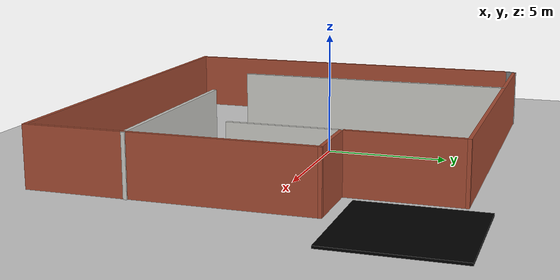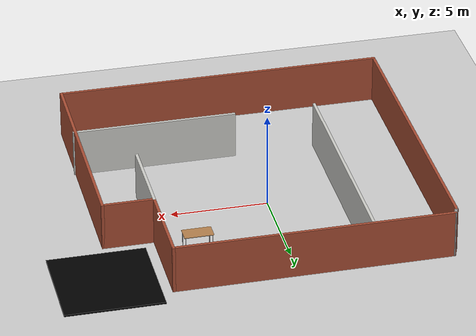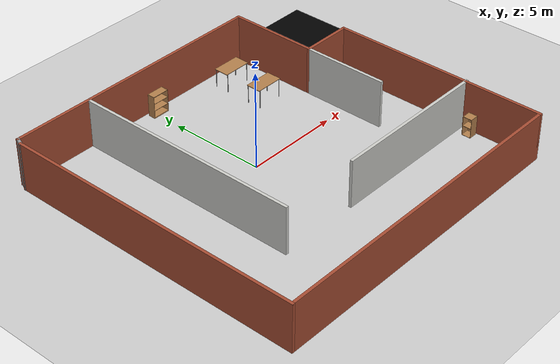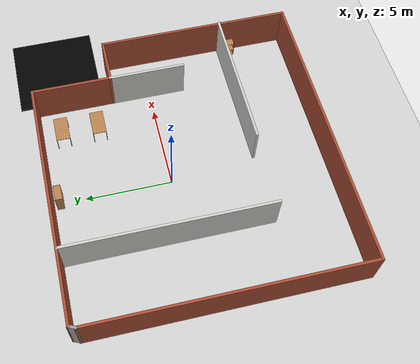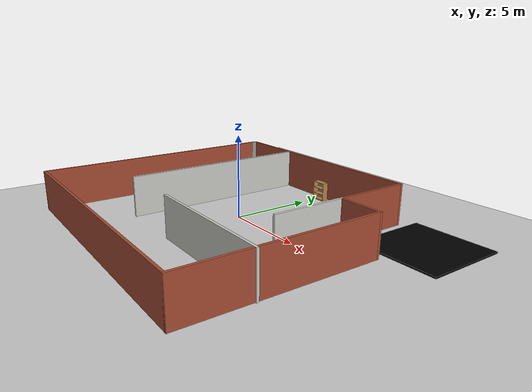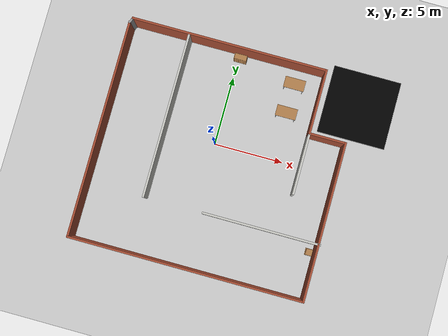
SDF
<sdf version="1.6">
 <world name="default">
  <light name="sun" type="directional">
   <pose>0 0 10 0 -0 0</pose>
   <diffuse>0.8 0.8 0.8 1</diffuse>
   <specular>0.2 0.2 0.2 1</specular>
   <attenuation>
    <range>1000</range>
    <constant>0.9</constant>
    <linear>0.01</linear>
    <quadratic>0.001</quadratic>
   </attenuation>
   <direction>-0.5 0.1 -0.9</direction>
  </light>
  <model name="ground_plane">
   <static>1</static>
   <link name="link">
    <collision name="collision">
     <geometry><plane><normal>0 0 1</normal><size>100 100</size></plane></geometry>
     <surface>
      <contact><collide_bitmask>65535</collide_bitmask></contact>
      <friction><ode><mu>100</mu><mu2>50</mu2></ode></friction>
     </surface>
    </collision>
    <visual name="visual">
     <cast_shadows>0</cast_shadows>
     <geometry><plane><normal>0 0 1</normal><size>100 100</size></plane></geometry>
     <material>
      <script>
       <uri>model://gcamp_small_building/materials/scripts/gazebo.material</uri>
       <name>Gazebo/Grey</name>
      </script>
     </material>
    </visual>
   </link>
  </model>
  <gravity>0 0 -9.8</gravity>
  <magnetic_field>6e-06 2.3e-05 -4.2e-05</magnetic_field>
  <atmosphere type="adiabatic"/>
  <physics name="default_physics" default="0" type="ode">
   <max_step_size>0.001</max_step_size>
   <real_time_factor>1</real_time_factor>
   <real_time_update_rate>1000</real_time_update_rate>
  </physics>
  <scene><ambient>0.4 0.4 0.4 1</ambient><background>0.7 0.7 0.7 1</background><shadows>1</shadows></scene>
  <spherical_coordinates>
   <surface_model>EARTH_WGS84</surface_model>
   <latitude_deg>0</latitude_deg>
   <longitude_deg>0</longitude_deg>
   <elevation>0</elevation>
   <heading_deg>0</heading_deg>
  </spherical_coordinates>
  <model name="gcamp_small_building">
   <pose>0.46855 -1.10251 0 0 -0 0</pose>
   <link name="Wall_11">
    <collision name="Wall_11_Collision">
     <geometry><box><size>12 0.15 2.5</size></box></geometry>
     <pose>3 0 1.25 0 -0 0</pose>
    </collision>
    <visual name="Wall_11_Visual">
     <pose>0 0 1.25 0 -0 0</pose>
     <geometry><box><size>12 0.15 2.5</size></box></geometry>
     <material>
      <script>
       <uri>model://gcamp_small_building/materials/scripts/gazebo.material</uri>
       <name>Gazebo/CeilingTiled</name>
      </script>
      <ambient>1 1 1 1</ambient>
     </material>
     <meta><layer>0</layer></meta>
    </visual>
    <pose>-4.16991 2.00561 0 0 -0 -1.5708</pose>
   </link>
   <link name="Wall_13">
    <collision name="Wall_13_Collision">
     <geometry><box><size>8.5 0.15 2.5</size></box></geometry>
     <pose>0 0 1.25 0 -0 0</pose>
    </collision>
    <visual name="Wall_13_Visual">
     <pose>0 0 1.25 0 -0 0</pose>
     <geometry><box><size>8.5 0.15 2.5</size></box></geometry>
     <material>
      <script>
       <uri>model://gcamp_small_building/materials/scripts/gazebo.material</uri>
       <name>Gazebo/CeilingTiled</name>
      </script>
      <ambient>1 1 1 1</ambient>
     </material>
     <meta><layer>0</layer></meta>
    </visual>
    <pose>4.29338 -3.92287 0 0 -0 0</pose>
   </link>
   <link name="Wall_15">
    <collision name="Wall_15_Collision">
     <geometry><box><size>4.5 0.15 2.5</size></box></geometry>
     <pose>0 0 1.25 0 -0 0</pose>
    </collision>
    <visual name="Wall_15_Visual">
     <pose>0 0 1.25 0 -0 0</pose>
     <geometry><box><size>4.5 0.15 2.5</size></box></geometry>
     <material>
      <script>
       <uri>model://gcamp_small_building/materials/scripts/gazebo.material</uri>
       <name>Gazebo/CeilingTiled</name>
      </script>
      <ambient>1 1 1 1</ambient>
     </material>
     <meta><layer>0</layer></meta>
    </visual>
    <pose>5.8051 1.18826 0 0 -0 -1.5708</pose>
   </link>
   <link name="Wall_3">
    <collision name="Wall_3_Collision">
     <geometry><box><size>15.75 0.15 2.5</size></box></geometry>
     <pose>0 0 1.25 0 -0 0</pose>
    </collision>
    <visual name="Wall_3_Visual">
     <pose>0 0 1.25 0 -0 0</pose>
     <geometry><box><size>15.75 0.15 2.5</size></box></geometry>
     <material>
      <script>
       <uri>model://gcamp_small_building/materials/scripts/gazebo.material</uri>
       <name>Gazebo/Bricks</name>
      </script>
      <ambient>1 1 1 1</ambient>
     </material>
     <meta><layer>0</layer></meta>
    </visual>
    <pose>-8.4449 -0.18674 0 0 -0 -1.5708</pose>
   </link>
   <link name="Wall_4">
    <collision name="Wall_4_Collision">
     <geometry><box><size>17 0.15 2.5</size></box></geometry>
     <pose>0 0 1.25 0 -0 0</pose>
    </collision>
    <visual name="Wall_4_Visual">
     <pose>0 0 1.25 0 -0 0</pose>
     <geometry><box><size>17 0.15 2.5</size></box></geometry>
     <material>
      <script>
       <uri>model://gcamp_small_building/materials/scripts/gazebo.material</uri>
       <name>Gazebo/Bricks</name>
      </script>
      <ambient>1 1 1 1</ambient>
     </material>
     <meta><layer>0</layer></meta>
    </visual>
    <pose>-0.019899 -7.98674 0 0 -0 0</pose>
   </link>
   <link name="Wall_5">
    <collision name="Wall_5_Collision">
     <geometry><box><size>11.5 0.15 2.5</size></box></geometry>
     <pose>0 0 1.25 0 -0 0</pose>
    </collision>
    <visual name="Wall_5_Visual">
     <pose>0 0 1.25 0 -0 0</pose>
     <geometry><box><size>11.5 0.15 2.5</size></box></geometry>
     <material>
      <script>
       <uri>model://gcamp_small_building/materials/scripts/gazebo.material</uri>
       <name>Gazebo/Bricks</name>
      </script>
      <ambient>1 1 1 1</ambient>
     </material>
     <meta><layer>0</layer></meta>
    </visual>
    <pose>8.4051 -2.31174 0 0 -0 1.5708</pose>
   </link>
   <link name="Wall_6">
    <collision name="Wall_6_Collision">
     <geometry><box><size>2.75 0.15 2.5</size></box></geometry>
     <pose>0 0 1.25 0 -0 0</pose>
    </collision>
    <visual name="Wall_6_Visual">
     <pose>0 0 1.25 0 -0 0</pose>
     <geometry><box><size>2.75 0.15 2.5</size></box></geometry>
     <material>
      <script>
       <uri>model://gcamp_small_building/materials/scripts/gazebo.material</uri>
       <name>Gazebo/Bricks</name>
      </script>
      <ambient>1 1 1 1</ambient>
     </material>
     <meta><layer>0</layer></meta>
    </visual>
    <pose>7.1051 3.36326 0 0 -0 3.14159</pose>
   </link>
   <link name="Wall_7">
    <collision name="Wall_7_Collision">
     <geometry><box><size>4.75 0.15 2.5</size></box></geometry>
     <pose>0 0 1.25 0 -0 0</pose>
    </collision>
    <visual name="Wall_7_Visual">
     <pose>0 0 1.25 0 -0 0</pose>
     <geometry><box><size>4.75 0.15 2.5</size></box></geometry>
     <material>
      <script>
       <uri>model://gcamp_small_building/materials/scripts/gazebo.material</uri>
       <name>Gazebo/Bricks</name>
      </script>
      <ambient>1 1 1 1</ambient>
     </material>
     <meta><layer>0</layer></meta>
    </visual>
    <pose>5.8051 5.66326 0 0 -0 1.5708</pose>
   </link>
   <link name="Wall_8">
    <collision name="Wall_8_Collision">
     <geometry><box><size>14.25 0.15 2.5</size></box></geometry>
     <pose>0 0 1.25 0 -0 0</pose>
    </collision>
    <visual name="Wall_8_Visual">
     <pose>0 0 1.25 0 -0 0</pose>
     <geometry><box><size>14.25 0.15 2.5</size></box></geometry>
     <material>
      <script>
       <uri>model://gcamp_small_building/materials/scripts/gazebo.material</uri>
       <name>Gazebo/Bricks</name>
      </script>
      <ambient>1 1 1 1</ambient>
     </material>
     <meta><layer>0</layer></meta>
    </visual>
    <pose>-1.2449 7.96326 0 0 -0 3.14159</pose>
   </link>
   <link name="Wall_9">
    <collision name="Wall_9_Collision">
     <geometry><box><size>0.530789 0.15 2.5</size></box></geometry>
     <pose>0 0 1.25 0 -0 0</pose>
    </collision>
    <visual name="Wall_9_Visual">
     <pose>0 0 1.25 0 -0 0</pose>
     <geometry><box><size>0.530789 0.15 2.5</size></box></geometry>
     <material>
      <script>
       <uri>model://gcamp_small_building/materials/scripts/gazebo.material</uri>
       <name>Gazebo/Grey</name>
      </script>
      <ambient>1 1 1 1</ambient>
     </material>
     <meta><layer>0</layer></meta>
    </visual>
    <pose>-8.3699 7.78826 0 0 -0 -1.97569</pose>
   </link>
   <static>1</static>
  </model>
  <model name="table">
   <static>1</static>
   <link name="link">
    <collision name="surface">
     <pose>0 0 1 0 -0 0</pose>
     <geometry><box><size>1.5 0.8 0.03</size></box></geometry>
     <surface><friction><ode><mu>0.6</mu><mu2>0.6</mu2></ode></friction></surface>
    </collision>
    <visual name="visual1">
     <pose>0 0 1 0 -0 0</pose>
     <geometry><box><size>1.5 0.8 0.03</size></box></geometry>
     <material>
      <script>
       <uri>model://gcamp_small_building/materials/scripts/gazebo.material</uri>
       <name>Gazebo/Wood</name>
      </script>
     </material>
    </visual>
    <collision name="front_left_leg">
     <pose>0.68 0.38 0.5 0 -0 0</pose>
     <geometry><cylinder><radius>0.02</radius><length>1</length></cylinder></geometry>
    </collision>
    <visual name="front_left_leg">
     <pose>0.68 0.38 0.5 0 -0 0</pose>
     <geometry><cylinder><radius>0.02</radius><length>1</length></cylinder></geometry>
     <material>
      <script>
       <uri>model://gcamp_small_building/materials/scripts/gazebo.material</uri>
       <name>Gazebo/Grey</name>
      </script>
     </material>
    </visual>
    <collision name="front_right_leg">
     <pose>0.68 -0.38 0.5 0 -0 0</pose>
     <geometry><cylinder><radius>0.02</radius><length>1</length></cylinder></geometry>
    </collision>
    <visual name="front_right_leg">
     <pose>0.68 -0.38 0.5 0 -0 0</pose>
     <geometry><cylinder><radius>0.02</radius><length>1</length></cylinder></geometry>
     <material>
      <script>
       <uri>model://gcamp_small_building/materials/scripts/gazebo.material</uri>
       <name>Gazebo/Grey</name>
      </script>
     </material>
    </visual>
    <collision name="back_right_leg">
     <pose>-0.68 -0.38 0.5 0 -0 0</pose>
     <geometry><cylinder><radius>0.02</radius><length>1</length></cylinder></geometry>
    </collision>
    <visual name="back_right_leg">
     <pose>-0.68 -0.38 0.5 0 -0 0</pose>
     <geometry><cylinder><radius>0.02</radius><length>1</length></cylinder></geometry>
     <material>
      <script>
       <uri>model://gcamp_small_building/materials/scripts/gazebo.material</uri>
       <name>Gazebo/Grey</name>
      </script>
     </material>
    </visual>
    <collision name="back_left_leg">
     <pose>-0.68 0.38 0.5 0 -0 0</pose>
     <geometry><cylinder><radius>0.02</radius><length>1</length></cylinder></geometry>
    </collision>
    <visual name="back_left_leg">
     <pose>-0.68 0.38 0.5 0 -0 0</pose>
     <geometry><cylinder><radius>0.02</radius><length>1</length></cylinder></geometry>
     <material>
      <script>
       <uri>model://gcamp_small_building/materials/scripts/gazebo.material</uri>
       <name>Gazebo/Grey</name>
      </script>
     </material>
    </visual>
   </link>
   <pose>4.38563 5.61757 0 0 -0 0</pose>
  </model>
  <model name="table_0">
   <static>1</static>
   <link name="link">
    <collision name="surface">
     <pose>0 0 1 0 -0 0</pose>
     <geometry><box><size>1.5 0.8 0.03</size></box></geometry>
     <surface><friction><ode><mu>0.6</mu><mu2>0.6</mu2></ode></friction></surface>
    </collision>
    <visual name="visual1">
     <pose>0 0 1 0 -0 0</pose>
     <geometry><box><size>1.5 0.8 0.03</size></box></geometry>
     <material>
      <script>
       <uri>model://gcamp_small_building/materials/scripts/gazebo.material</uri>
       <name>Gazebo/Wood</name>
      </script>
     </material>
    </visual>
    <collision name="front_left_leg">
     <pose>0.68 0.38 0.5 0 -0 0</pose>
     <geometry><cylinder><radius>0.02</radius><length>1</length></cylinder></geometry>
    </collision>
    <visual name="front_left_leg">
     <pose>0.68 0.38 0.5 0 -0 0</pose>
     <geometry><cylinder><radius>0.02</radius><length>1</length></cylinder></geometry>
     <material>
      <script>
       <uri>model://gcamp_small_building/materials/scripts/gazebo.material</uri>
       <name>Gazebo/Grey</name>
      </script>
     </material>
    </visual>
    <collision name="front_right_leg">
     <pose>0.68 -0.38 0.5 0 -0 0</pose>
     <geometry><cylinder><radius>0.02</radius><length>1</length></cylinder></geometry>
    </collision>
    <visual name="front_right_leg">
     <pose>0.68 -0.38 0.5 0 -0 0</pose>
     <geometry><cylinder><radius>0.02</radius><length>1</length></cylinder></geometry>
     <material>
      <script>
       <uri>model://gcamp_small_building/materials/scripts/gazebo.material</uri>
       <name>Gazebo/Grey</name>
      </script>
     </material>
    </visual>
    <collision name="back_right_leg">
     <pose>-0.68 -0.38 0.5 0 -0 0</pose>
     <geometry><cylinder><radius>0.02</radius><length>1</length></cylinder></geometry>
    </collision>
    <visual name="back_right_leg">
     <pose>-0.68 -0.38 0.5 0 -0 0</pose>
     <geometry><cylinder><radius>0.02</radius><length>1</length></cylinder></geometry>
     <material>
      <script>
       <uri>model://gcamp_small_building/materials/scripts/gazebo.material</uri>
       <name>Gazebo/Grey</name>
      </script>
     </material>
    </visual>
    <collision name="back_left_leg">
     <pose>-0.68 0.38 0.5 0 -0 0</pose>
     <geometry><cylinder><radius>0.02</radius><length>1</length></cylinder></geometry>
    </collision>
    <visual name="back_left_leg">
     <pose>-0.68 0.38 0.5 0 -0 0</pose>
     <geometry><cylinder><radius>0.02</radius><length>1</length></cylinder></geometry>
     <material>
      <script>
       <uri>model://gcamp_small_building/materials/scripts/gazebo.material</uri>
       <name>Gazebo/Grey</name>
      </script>
     </material>
    </visual>
   </link>
   <pose>4.35793 3.48172 0 0 -0 0</pose>
  </model>
  <model name="bookshelf">
   <static>1</static>
   <link name="link">
    <inertial><mass>1</mass></inertial>
    <collision name="back">
     <pose>0 0.005 0.6 0 -0 0</pose>
     <geometry><box><size>0.9 0.01 1.2</size></box></geometry>
    </collision>
    <visual name="visual1">
     <pose>0 0.005 0.6 0 -0 0</pose>
     <geometry><box><size>0.9 0.01 1.2</size></box></geometry>
     <material>
      <script>
       <uri>model://gcamp_small_building/materials/scripts/gazebo.material</uri>
       <name>Gazebo/Wood</name>
      </script>
     </material>
    </visual>
    <collision name="left_side">
     <pose>0.45 -0.195 0.6 0 -0 0</pose>
     <geometry><box><size>0.02 0.4 1.2</size></box></geometry>
    </collision>
    <visual name="visual2">
     <pose>0.45 -0.195 0.6 0 -0 0</pose>
     <geometry><box><size>0.02 0.4 1.2</size></box></geometry>
     <material>
      <script>
       <uri>model://gcamp_small_building/materials/scripts/gazebo.material</uri>
       <name>Gazebo/Wood</name>
      </script>
     </material>
    </visual>
    <collision name="right_side">
     <pose>-0.45 -0.195 0.6 0 -0 0</pose>
     <geometry><box><size>0.02 0.4 1.2</size></box></geometry>
    </collision>
    <visual name="visual3">
     <pose>-0.45 -0.195 0.6 0 -0 0</pose>
     <geometry><box><size>0.02 0.4 1.2</size></box></geometry>
     <material>
      <script>
       <uri>model://gcamp_small_building/materials/scripts/gazebo.material</uri>
       <name>Gazebo/Wood</name>
      </script>
     </material>
    </visual>
    <collision name="bottom">
     <pose>0 -0.195 0.03 0 -0 0</pose>
     <geometry><box><size>0.88 0.4 0.06</size></box></geometry>
    </collision>
    <visual name="visual4">
     <pose>0 -0.195 0.03 0 -0 0</pose>
     <geometry><box><size>0.88 0.4 0.06</size></box></geometry>
     <material>
      <script>
       <uri>model://gcamp_small_building/materials/scripts/gazebo.material</uri>
       <name>Gazebo/Wood</name>
      </script>
     </material>
    </visual>
    <collision name="top">
     <pose>0 -0.195 1.19 0 -0 0</pose>
     <geometry><box><size>0.88 0.4 0.02</size></box></geometry>
    </collision>
    <visual name="visual5">
     <pose>0 -0.195 1.19 0 -0 0</pose>
     <geometry><box><size>0.88 0.4 0.02</size></box></geometry>
     <material>
      <script>
       <uri>model://gcamp_small_building/materials/scripts/gazebo.material</uri>
       <name>Gazebo/Wood</name>
      </script>
     </material>
    </visual>
    <collision name="low_shelf">
     <pose>0 -0.195 0.43 0 -0 0</pose>
     <geometry><box><size>0.88 0.4 0.02</size></box></geometry>
    </collision>
    <visual name="visual6">
     <pose>0 -0.195 0.43 0 -0 0</pose>
     <geometry><box><size>0.88 0.4 0.02</size></box></geometry>
     <material>
      <script>
       <uri>model://gcamp_small_building/materials/scripts/gazebo.material</uri>
       <name>Gazebo/Wood</name>
      </script>
     </material>
    </visual>
    <collision name="high_shelf">
     <pose>0 -0.195 0.8 0 -0 0</pose>
     <geometry><box><size>0.88 0.4 0.02</size></box></geometry>
    </collision>
    <visual name="visual7">
     <pose>0 -0.195 0.8 0 -0 0</pose>
     <geometry><box><size>0.88 0.4 0.02</size></box></geometry>
     <material>
      <script>
       <uri>model://gcamp_small_building/materials/scripts/gazebo.material</uri>
       <name>Gazebo/Wood</name>
      </script>
     </material>
    </visual>
   </link>
   <pose>0.151486 6.62816 0 0 -0 0</pose>
  </model>
  <model name="cabinet">
   <static>1</static>
   <link name="cabinet_bottom_plate">
    <inertial>
     <pose>0 0 -1 0 -0 0</pose>
     <inertia><ixx>2.05</ixx><ixy>0</ixy><ixz>0</ixz><iyy>2.05</iyy><iyz>0</iyz><izz>2.05</izz></inertia>
     <mass>25</mass>
    </inertial>
    <collision name="cabinet_bottom_plate_geom">
     <pose>0 0 0.01 0 -0 0</pose>
     <geometry><box><size>0.45 0.45 0.02</size></box></geometry>
    </collision>
    <visual name="cabinet_bottom_plate_geom_visual">
     <pose>0 0 0.01 0 -0 0</pose>
     <geometry><box><size>0.45 0.45 0.02</size></box></geometry>
     <material>
      <script>
       <uri>model://gcamp_small_building/materials/scripts/gazebo.material</uri>
       <name>Gazebo/Wood</name>
      </script>
     </material>
    </visual>
    <collision name="cabinet_bottom_plate_geom_cabinet_back_plate">
     <pose>0.235 0 0.51 0 -0 0</pose>
     <geometry><box><size>0.02 0.45 1.02</size></box></geometry>
    </collision>
    <visual name="cabinet_bottom_plate_geom_cabinet_back_plate_visual">
     <pose>0.235 0 0.51 0 -0 0</pose>
     <geometry><box><size>0.02 0.45 1.02</size></box></geometry>
     <material>
      <script>
       <uri>model://gcamp_small_building/materials/scripts/gazebo.material</uri>
       <name>Gazebo/Wood</name>
      </script>
     </material>
    </visual>
    <collision name="cabinet_bottom_plate_geom_cabinet_left_plate">
     <pose>0 0.235 0.51 0 -0 0</pose>
     <geometry><box><size>0.45 0.02 1.02</size></box></geometry>
    </collision>
    <visual name="cabinet_bottom_plate_geom_cabinet_left_plate_visual">
     <pose>0 0.235 0.51 0 -0 0</pose>
     <geometry><box><size>0.45 0.02 1.02</size></box></geometry>
     <material>
      <script>
       <uri>model://gcamp_small_building/materials/scripts/gazebo.material</uri>
       <name>Gazebo/Wood</name>
      </script>
     </material>
    </visual>
    <collision name="cabinet_bottom_plate_geom_cabinet_middle_plate">
     <pose>0 0 0.51 0 -0 0</pose>
     <geometry><box><size>0.45 0.45 0.02</size></box></geometry>
    </collision>
    <visual name="cabinet_bottom_plate_geom_cabinet_middle_plate_visual">
     <pose>0 0 0.51 0 -0 0</pose>
     <geometry><box><size>0.45 0.45 0.02</size></box></geometry>
     <material>
      <script>
       <uri>model://gcamp_small_building/materials/scripts/gazebo.material</uri>
       <name>Gazebo/Wood</name>
      </script>
     </material>
    </visual>
    <collision name="cabinet_bottom_plate_geom_cabinet_right_plate">
     <pose>0 -0.235 0.51 0 -0 0</pose>
     <geometry><box><size>0.45 0.02 1.02</size></box></geometry>
    </collision>
    <visual name="cabinet_bottom_plate_geom_cabinet_right_plate_visual">
     <pose>0 -0.235 0.51 0 -0 0</pose>
     <geometry><box><size>0.45 0.02 1.02</size></box></geometry>
     <material>
      <script>
       <uri>model://gcamp_small_building/materials/scripts/gazebo.material</uri>
       <name>Gazebo/Wood</name>
      </script>
     </material>
    </visual>
    <collision name="cabinet_bottom_plate_geom_cabinet_top_plate">
     <pose>0 0 1.01 0 -0 0</pose>
     <geometry><box><size>0.45 0.45 0.02</size></box></geometry>
    </collision>
    <visual name="cabinet_bottom_plate_geom_cabinet_top_plate_visual">
     <pose>0 0 1.01 0 -0 0</pose>
     <geometry><box><size>0.45 0.45 0.02</size></box></geometry>
     <material>
      <script>
       <uri>model://gcamp_small_building/materials/scripts/gazebo.material</uri>
       <name>Gazebo/Wood</name>
      </script>
     </material>
    </visual>
   </link>
   <pose>8.48925 -5.6963 0 0 -0 0</pose>
  </model>
  <model name="logo">
   <link name="link_0">
    <inertial>
     <mass>1</mass>
     <inertia>
      <ixx>0.166667</ixx>
      <ixy>0</ixy>
      <ixz>0</ixz>
      <iyy>0.166667</iyy>
      <iyz>0</iyz>
      <izz>0.166667</izz>
     </inertia>
    </inertial>
    <visual name="visual">
     <geometry><box><size>5 5 0.1</size></box></geometry>
     <material>
      <lighting>1</lighting>
      <script>
       <uri>model://logo/materials/scripts</uri>
       <uri>model://logo/materials/textures</uri>
       <name>flat_box/Diffuse</name>
      </script>
      <shader type="pixel"><normal_map>__default__</normal_map></shader>
      <ambient>0.3 0.3 0.3 1</ambient>
      <diffuse>0 0 0 1</diffuse>
      <specular>0.01 0.01 0.01 1</specular>
      <emissive>1 1 1 1</emissive>
     </material>
    </visual>
    <collision name="collision">
     <geometry><box><size>5 5 0.1</size></box></geometry>
     <surface>
      <friction>
       <ode><mu>1</mu><mu2>1</mu2><fdir1>0 0 0</fdir1><slip1>0</slip1><slip2>0</slip2></ode>
       <torsional>
        <coefficient>1</coefficient>
        <patch_radius>0</patch_radius>
        <surface_radius>0</surface_radius>
        <use_patch_radius>1</use_patch_radius>
        <ode><slip>0</slip></ode>
       </torsional>
      </friction>
      <bounce><restitution_coefficient>0</restitution_coefficient><threshold>1e+06</threshold></bounce>
      <contact>
       <collide_without_contact>0</collide_without_contact>
       <collide_without_contact_bitmask>1</collide_without_contact_bitmask>
       <collide_bitmask>1</collide_bitmask>
       <ode>
        <soft_cfm>0</soft_cfm>
        <soft_erp>0.2</soft_erp>
        <kp>1e+13</kp>
        <kd>1</kd>
        <max_vel>0.01</max_vel>
        <min_depth>0</min_depth>
       </ode>
       <bullet>
        <split_impulse>1</split_impulse>
        <split_impulse_penetration_threshold>-0.01</split_impulse_penetration_threshold>
        <soft_cfm>0</soft_cfm>
        <soft_erp>0.2</soft_erp>
        <kp>1e+13</kp>
        <kd>1</kd>
       </bullet>
      </contact>
     </surface>
    </collision>
   </link>
   <static>0</static>
   <pose>9.36554 5.36507 0.049981 0 -7e-06 1.57143</pose>
  </model>
 </world>
</sdf>
